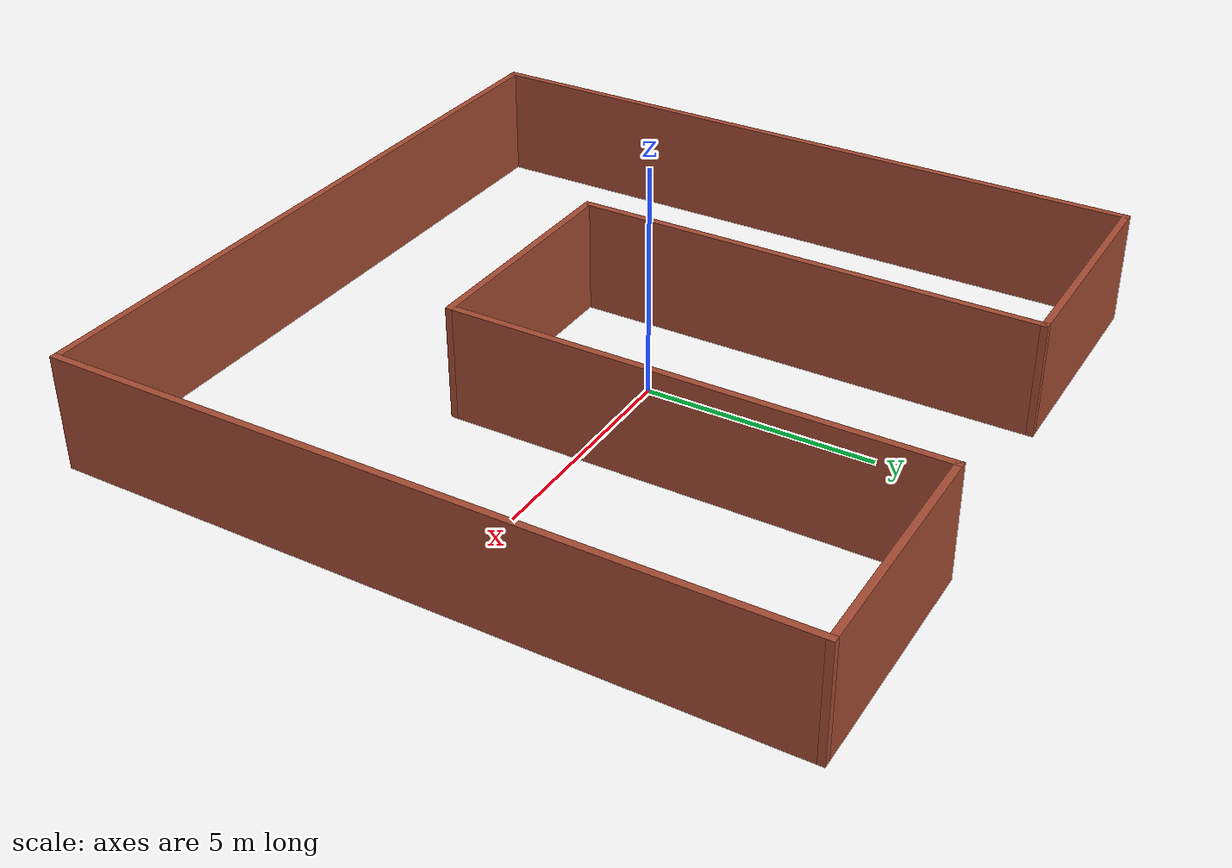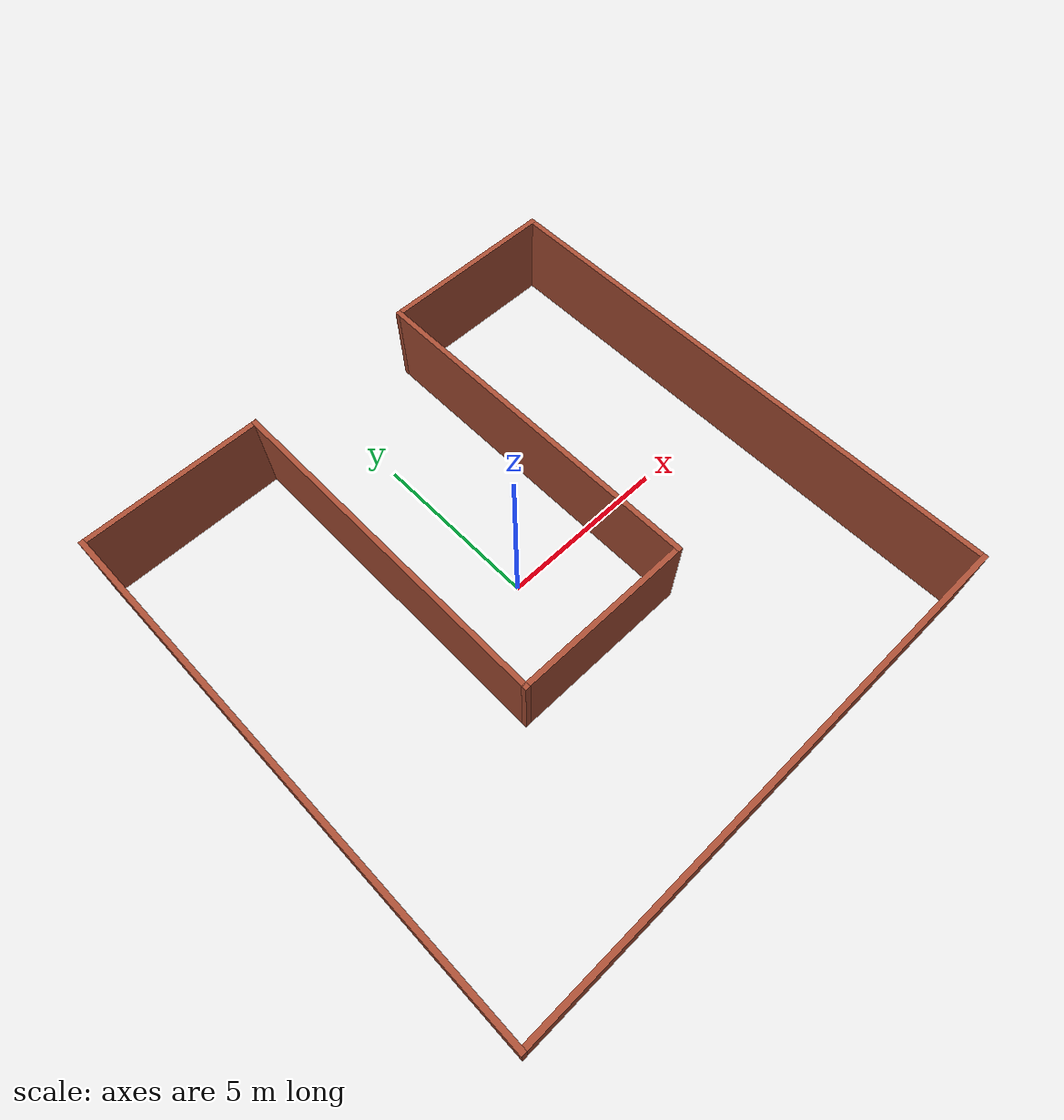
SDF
<?xml version='1.0'?>
<sdf version='1.6'>
  <model name='outer_wall'>
    <pose frame=''>0.115277 -0.303547 0 0 -0 0</pose>
    <link name='Wall_14'>
      <collision name='Wall_14_Collision'>
        <geometry>
          <box>
            <size>15.5 0.15 2.5</size>
          </box>
        </geometry>
        <pose frame=''>0 0 1.25 0 -0 0</pose>
      </collision>
      <visual name='Wall_14_Visual'>
        <pose frame=''>0 0 1.25 0 -0 0</pose>
        <geometry>
          <box>
            <size>15.5 0.15 2.5</size>
          </box>
        </geometry>
        <material>
          <script>
            <uri>file://media/materials/scripts/gazebo.material</uri>
            <name>Gazebo/Bricks</name>
          </script>
          <ambient>1 0.666667 0 1</ambient>
        </material>
        <meta>
          <layer>0</layer>
        </meta>
      </visual>
      <pose frame=''>-7.675 -0.125 0 0 0 -1.5708</pose>
    </link>
    <link name='Wall_15'>
      <collision name='Wall_15_Collision'>
        <geometry>
          <box>
            <size>15.5 0.15 2.5</size>
          </box>
        </geometry>
        <pose frame=''>0 0 1.25 0 -0 0</pose>
      </collision>
      <visual name='Wall_15_Visual'>
        <pose frame=''>0 0 1.25 0 -0 0</pose>
        <geometry>
          <box>
            <size>15.5 0.15 2.5</size>
          </box>
        </geometry>
        <material>
          <script>
            <uri>file://media/materials/scripts/gazebo.material</uri>
            <name>Gazebo/Bricks</name>
          </script>
          <ambient>1 0.666667 0 1</ambient>
        </material>
        <meta>
          <layer>0</layer>
        </meta>
      </visual>
      <pose frame=''>0 -7.8 0 0 -0 0</pose>
    </link>
    <link name='Wall_16'>
      <collision name='Wall_16_Collision'>
        <geometry>
          <box>
            <size>15.75 0.15 2.5</size>
          </box>
        </geometry>
        <pose frame=''>0 0 1.25 0 -0 0</pose>
      </collision>
      <visual name='Wall_16_Visual'>
        <pose frame=''>0 0 1.25 0 -0 0</pose>
        <geometry>
          <box>
            <size>15.75 0.15 2.5</size>
          </box>
        </geometry>
        <material>
          <script>
            <uri>file://media/materials/scripts/gazebo.material</uri>
            <name>Gazebo/Bricks</name>
          </script>
          <ambient>1 0.666667 0 1</ambient>
        </material>
        <meta>
          <layer>0</layer>
        </meta>
      </visual>
      <pose frame=''>7.675 0 0 0 -0 1.5708</pose>
    </link>
    <link name='Wall_17'>
      <collision name='Wall_17_Collision'>
        <geometry>
          <box>
            <size>5.25 0.15 2.5</size>
          </box>
        </geometry>
        <pose frame=''>0 0 1.25 0 -0 0</pose>
      </collision>
      <visual name='Wall_17_Visual'>
        <pose frame=''>0 0 1.25 0 -0 0</pose>
        <geometry>
          <box>
            <size>5.25 0.15 2.5</size>
          </box>
        </geometry>
        <material>
          <script>
            <uri>file://media/materials/scripts/gazebo.material</uri>
            <name>Gazebo/Bricks</name>
          </script>
          <ambient>1 0.666667 0 1</ambient>
        </material>
        <meta>
          <layer>0</layer>
        </meta>
      </visual>
      <pose frame=''>5.125 7.8 0 0 -0 3.14159</pose>
    </link>
    <link name='Wall_18'>
      <collision name='Wall_18_Collision'>
        <geometry>
          <box>
            <size>10.5 0.15 2.5</size>
          </box>
        </geometry>
        <pose frame=''>0 0 1.25 0 -0 0</pose>
      </collision>
      <visual name='Wall_18_Visual'>
        <pose frame=''>0 0 1.25 0 -0 0</pose>
        <geometry>
          <box>
            <size>10.5 0.15 2.5</size>
          </box>
        </geometry>
        <material>
          <script>
            <uri>file://media/materials/scripts/gazebo.material</uri>
            <name>Gazebo/Bricks</name>
          </script>
          <ambient>1 0.666667 0 1</ambient>
        </material>
        <meta>
          <layer>0</layer>
        </meta>
      </visual>
      <pose frame=''>2.575 2.625 0 0 0 -1.5708</pose>
    </link>
    <link name='Wall_19'>
      <collision name='Wall_19_Collision'>
        <geometry>
          <box>
            <size>5.25 0.15 2.5</size>
          </box>
        </geometry>
        <pose frame=''>0 0 1.25 0 -0 0</pose>
      </collision>
      <visual name='Wall_19_Visual'>
        <pose frame=''>0 0 1.25 0 -0 0</pose>
        <geometry>
          <box>
            <size>5.25 0.15 2.5</size>
          </box>
        </geometry>
        <material>
          <script>
            <uri>file://media/materials/scripts/gazebo.material</uri>
            <name>Gazebo/Bricks</name>
          </script>
          <ambient>1 0.666667 0 1</ambient>
        </material>
        <meta>
          <layer>0</layer>
        </meta>
      </visual>
      <pose frame=''>0.025 -2.55 0 0 -0 3.14159</pose>
    </link>
    <link name='Wall_20'>
      <collision name='Wall_20_Collision'>
        <geometry>
          <box>
            <size>10.25 0.15 2.5</size>
          </box>
        </geometry>
        <pose frame=''>0 0 1.25 0 -0 0</pose>
      </collision>
      <visual name='Wall_20_Visual'>
        <pose frame=''>0 0 1.25 0 -0 0</pose>
        <geometry>
          <box>
            <size>10.25 0.15 2.5</size>
          </box>
        </geometry>
        <material>
          <script>
            <uri>file://media/materials/scripts/gazebo.material</uri>
            <name>Gazebo/Bricks</name>
          </script>
          <ambient>1 0.666667 0 1</ambient>
        </material>
        <meta>
          <layer>0</layer>
        </meta>
      </visual>
      <pose frame=''>-2.525 2.5 0 0 -0 1.5708</pose>
    </link>
    <link name='Wall_21'>
      <collision name='Wall_21_Collision'>
        <geometry>
          <box>
            <size>5.3 0.15 2.5</size>
          </box>
        </geometry>
        <pose frame=''>0 0 1.25 0 -0 0</pose>
      </collision>
      <visual name='Wall_21_Visual'>
        <pose frame=''>0 0 1.25 0 -0 0</pose>
        <geometry>
          <box>
            <size>5.3 0.15 2.5</size>
          </box>
        </geometry>
        <material>
          <script>
            <uri>file://media/materials/scripts/gazebo.material</uri>
            <name>Gazebo/Bricks</name>
          </script>
          <ambient>1 0.666667 0 1</ambient>
        </material>
        <meta>
          <layer>0</layer>
        </meta>
      </visual>
      <pose frame=''>-5.1 7.55 0 0 -0 3.14159</pose>
    </link>
    <static>1</static>
  </model>
</sdf>
